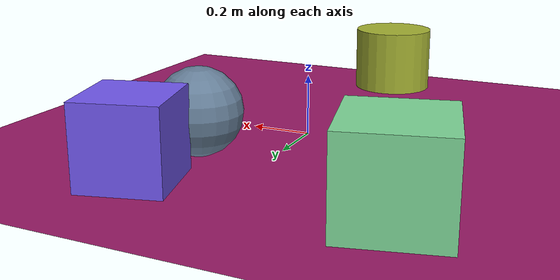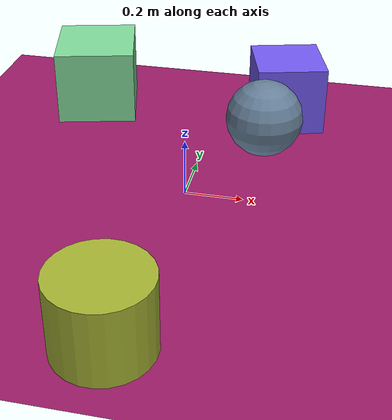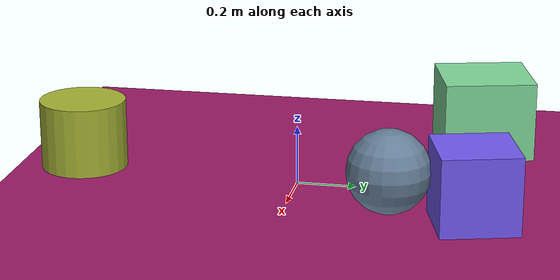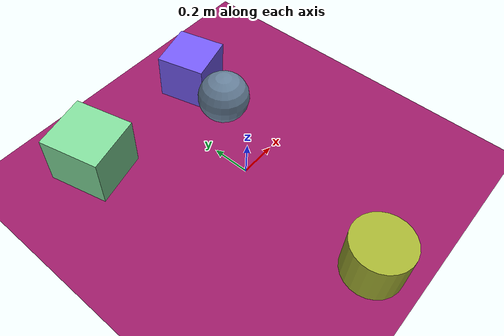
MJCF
<mujoco>
   <asset>
<texture type="skybox" builtin="gradient" rgb1="0.6 0.0 0.4" rgb2="0.2 0.6 0.2" width="500" height="500"/>
<texture name="checker_0" builtin="checker" rgb1="0.8 1.0 0.2" rgb2="0.5 0.4 0.2" width="500" height="500"/>
<texture name="checker_1" builtin="checker" rgb1="0.3 0.1 0.9" rgb2="0.6 0.6 1.0" width="500" height="500"/>
<texture name="flat_2" builtin="flat" rgb1="0.4 0.5 0.6" rgb2="0.4 0.5 0.6"  width="500" height="500"/>
<texture name="gradient_3" builtin="gradient" rgb1="0.4 0.9 0.4" rgb2="0.6 0.8 0.8" width="500" height="500"/><material name="checker_0_mat" reflectance="0.6493324882624735" texrepeat="10 10" texture="checker_0" texuniform="false" />
<material name="checker_1_mat" reflectance="0.49440295137743107" texrepeat="6 6" texture="checker_1" texuniform="false" />
<material name="flat_2_mat" reflectance="0.7129090266448075" texture="flat_2" texuniform="true"/>
<material name="gradient_3_mat" reflectance="0.7714972506386172" texture="gradient_3" texuniform="true"/>
   </asset>

   <worldbody>
     <geom type="plane" size="1 1 0.1" rgba="0.6 0.1 0.4 1" />
<light pos="0.8153521525261058 -0.2670468005729911 2" dir="0 0 -1" cutoff="90" diffuse="1 1 1" specular="1 1 1"/>
<geom type="cylinder" pos="-0.05 -0.77 0.12" size="0.15 0.12 0.12" material="checker_0_mat" euler="0 0 67" />
<geom type="box" pos="0.27 0.62 0.13" size="0.13 0.13 0.13" material="checker_1_mat" euler="0 0 15" />
<geom type="sphere" pos="0.22 0.34 0.14" size="0.14 0.14 0.14" material="flat_2_mat" euler="0 0 53" />
<geom type="box" pos="-0.49 0.59 0.14" size="0.15 0.16 0.14" material="gradient_3_mat" euler="0 0 14" /><camera euler="60 0 180" fovy="60" name="camera1" pos="-0.2 -1.5 1"></camera>   </worldbody>
   <visual>
      <headlight diffuse="0.7 0.7 0.7"/>
   </visual>
</mujoco>
